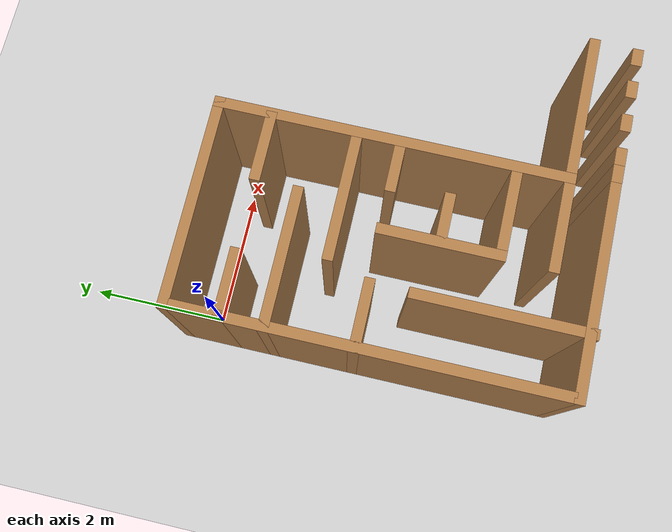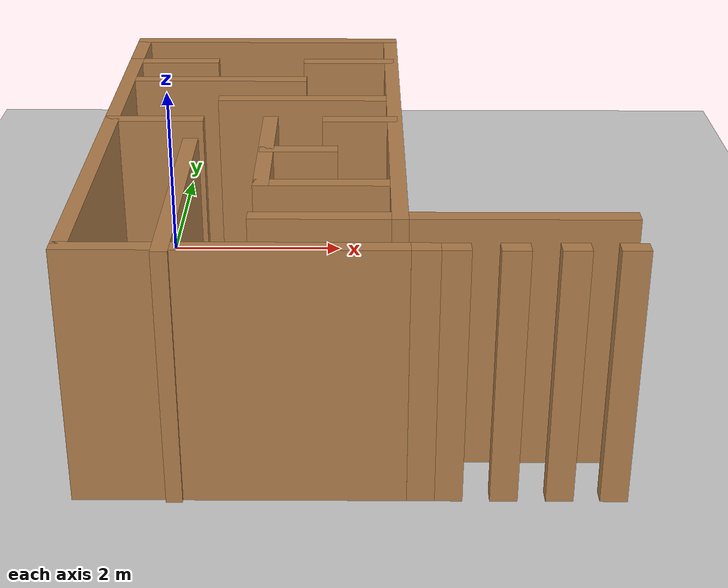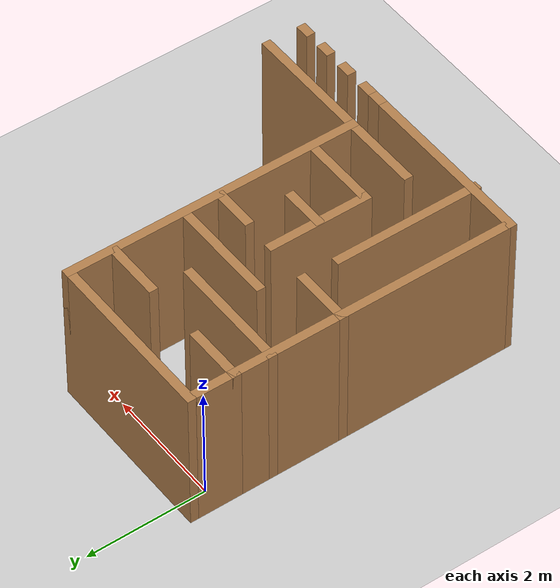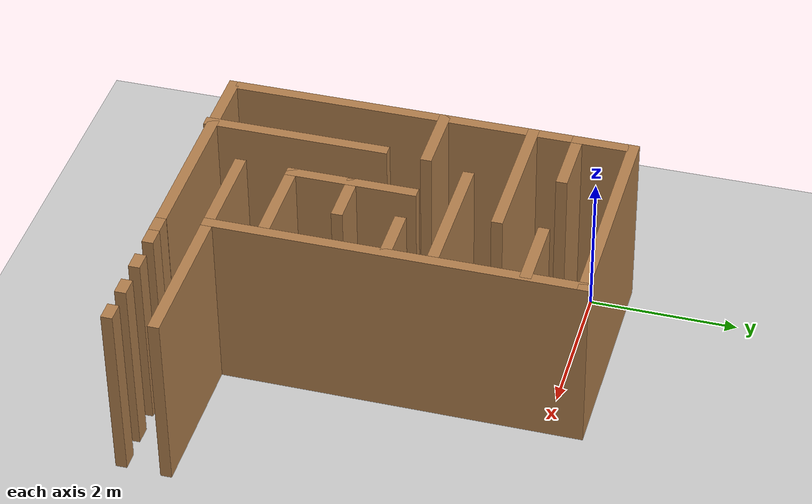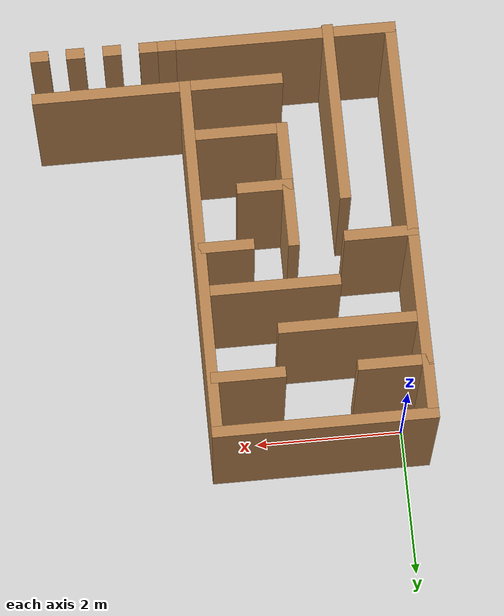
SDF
<sdf version="1.6">
 <world name="default">
  <scene><ambient>0.4 0.4 0.4 1</ambient><background>0.7 0.7 0.7 1</background><shadows>1</shadows></scene>
  <light name="sun" type="directional">
   <pose>0 0 10 0 -0 0</pose>
   <diffuse>0.8 0.8 0.8 1</diffuse>
   <specular>0.1 0.1 0.1 1</specular>
   <attenuation>
    <range>1000</range>
    <constant>0.9</constant>
    <linear>0.01</linear>
    <quadratic>0.001</quadratic>
   </attenuation>
   <direction>-0.5 0.5 -1</direction>
  </light>
  <model name="ground_plane">
   <static>1</static>
   <link name="link">
    <collision name="collision">
     <geometry><plane><normal>0 0 1</normal><size>100 100</size></plane></geometry>
     <surface><friction><ode><mu>100</mu><mu2>50</mu2></ode></friction></surface>
    </collision>
    <visual name="visual">
     <cast_shadows>0</cast_shadows>
     <geometry><plane><normal>0 0 1</normal><size>100 100</size></plane></geometry>
     <material>
      <script><uri>file://media/materials/scripts/gazebo.material</uri><name>Gazebo/Grey</name></script>
     </material>
    </visual>
   </link>
  </model>
  <physics name="default_physics" default="0" type="ode">
   <real_time_update_rate>1000</real_time_update_rate>
   <max_step_size>0.001</max_step_size>
   <real_time_factor>1</real_time_factor>
   <ode>
    <solver>
     <type>quick</type>
     <iters>150</iters>
     <precon_iters>0</precon_iters>
     <sor>1.4</sor>
     <use_dynamic_moi_rescaling>1</use_dynamic_moi_rescaling>
    </solver>
    <constraints>
     <cfm>1e-05</cfm>
     <erp>0.2</erp>
     <contact_max_correcting_vel>2000</contact_max_correcting_vel>
     <contact_surface_layer>0.01</contact_surface_layer>
    </constraints>
   </ode>
  </physics>
  <gravity>0 0 -9.8</gravity>
  <magnetic_field>6e-06 2.3e-05 -4.2e-05</magnetic_field>
  <atmosphere type="adiabatic"/>
  <spherical_coordinates>
   <surface_model>EARTH_WGS84</surface_model>
   <latitude_deg>0</latitude_deg>
   <longitude_deg>0</longitude_deg>
   <elevation>0</elevation>
   <heading_deg>0</heading_deg>
  </spherical_coordinates>
  <model name="Untitled">
   <pose>2.15464 -2.32386 0 0 -0 0</pose>
   <link name="Wall_11">
    <collision name="Wall_11_Collision">
     <geometry><box><size>1 0.15 2.5</size></box></geometry>
     <pose>0 0 1.25 0 -0 0</pose>
    </collision>
    <visual name="Wall_11_Visual">
     <pose>0 0 1.25 0 -0 0</pose>
     <geometry><box><size>1 0.15 2.5</size></box></geometry>
     <material>
      <script><uri>file://media/materials/scripts/gazebo.material</uri><name>Gazebo/Wood</name></script>
      <ambient>1 1 1 1</ambient>
     </material>
    </visual>
    <pose>-0.049498 2.00656 0 0 -0 0</pose>
   </link>
   <link name="Wall_13">
    <collision name="Wall_13_Collision">
     <geometry><box><size>4.75 0.15 2.5</size></box></geometry>
     <pose>0 0 1.25 0 -0 0</pose>
    </collision>
    <visual name="Wall_13_Visual">
     <pose>0 0 1.25 0 -0 0</pose>
     <geometry><box><size>4.75 0.15 2.5</size></box></geometry>
     <material>
      <script><uri>file://media/materials/scripts/gazebo.material</uri><name>Gazebo/Wood</name></script>
      <ambient>1 1 1 1</ambient>
     </material>
    </visual>
    <pose>-2.4245 -0.293439 0 0 0 -1.5708</pose>
   </link>
   <link name="Wall_16">
    <collision name="Wall_16_Collision">
     <geometry><box><size>2 0.15 2.5</size></box></geometry>
     <pose>0 0 1.25 0 -0 0</pose>
    </collision>
    <visual name="Wall_16_Visual">
     <pose>0 0 1.25 0 -0 0</pose>
     <geometry><box><size>2 0.15 2.5</size></box></geometry>
     <material>
      <script><uri>file://media/materials/scripts/gazebo.material</uri><name>Gazebo/Wood</name></script>
      <ambient>1 1 1 1</ambient>
     </material>
    </visual>
    <pose>-1.4995 1.40656 0 0 -0 3.14159</pose>
   </link>
   <link name="Wall_19">
    <collision name="Wall_19_Collision">
     <geometry><box><size>1.75 0.15 2.5</size></box></geometry>
     <pose>0 0 1.25 0 -0 0</pose>
    </collision>
    <visual name="Wall_19_Visual">
     <pose>0 0 1.25 0 -0 0</pose>
     <geometry><box><size>1.75 0.15 2.5</size></box></geometry>
     <material>
      <script><uri>file://media/materials/scripts/gazebo.material</uri><name>Gazebo/Wood</name></script>
      <ambient>1 1 1 1</ambient>
     </material>
    </visual>
    <pose>-0.524498 0.806561 0 0 -0 0</pose>
   </link>
   <link name="Wall_22">
    <collision name="Wall_22_Collision">
     <geometry><box><size>1 0.15 2.5</size></box></geometry>
     <pose>0 0 1.25 0 -0 0</pose>
    </collision>
    <visual name="Wall_22_Visual">
     <pose>0 0 1.25 0 -0 0</pose>
     <geometry><box><size>1 0.15 2.5</size></box></geometry>
     <material>
      <script><uri>file://media/materials/scripts/gazebo.material</uri><name>Gazebo/Wood</name></script>
      <ambient>1 1 1 1</ambient>
     </material>
    </visual>
    <pose>-1.9995 0.206561 0 0 -0 3.14159</pose>
   </link>
   <link name="Wall_25">
    <collision name="Wall_25_Collision">
     <geometry><box><size>0.75 0.15 2.5</size></box></geometry>
     <pose>0 0 1.25 0 -0 0</pose>
    </collision>
    <visual name="Wall_25_Visual">
     <pose>0 0 1.25 0 -0 0</pose>
     <geometry><box><size>0.75 0.15 2.5</size></box></geometry>
     <material>
      <script><uri>file://media/materials/scripts/gazebo.material</uri><name>Gazebo/Wood</name></script>
      <ambient>1 1 1 1</ambient>
     </material>
    </visual>
    <pose>0.075502 0.206561 0 0 -0 0</pose>
   </link>
   <link name="Wall_28">
    <collision name="Wall_28_Collision">
     <geometry><box><size>1.75 0.15 2.5</size></box></geometry>
     <pose>0 0 1.25 0 -0 0</pose>
    </collision>
    <visual name="Wall_28_Visual">
     <pose>0 0 1.25 0 -0 0</pose>
     <geometry><box><size>1.75 0.15 2.5</size></box></geometry>
     <material>
      <script><uri>file://media/materials/scripts/gazebo.material</uri><name>Gazebo/Wood</name></script>
      <ambient>1 1 1 1</ambient>
     </material>
    </visual>
    <pose>-0.824498 -0.593439 0 0 0 -1.5708</pose>
   </link>
   <link name="Wall_3">
    <collision name="Wall_3_Collision">
     <geometry><box><size>0.75 0.15 2.5</size></box></geometry>
     <pose>0 0 1.25 0 -0 0</pose>
    </collision>
    <visual name="Wall_3_Visual">
     <pose>0 0 1.25 0 -0 0</pose>
     <geometry><box><size>0.75 0.15 2.5</size></box></geometry>
     <material>
      <script><uri>file://media/materials/scripts/gazebo.material</uri><name>Gazebo/Wood</name></script>
      <ambient>1 1 1 1</ambient>
     </material>
    </visual>
    <pose>-2.4245 2.30656 0 0 0 -1.5708</pose>
   </link>
   <link name="Wall_30">
    <collision name="Wall_30_Collision">
     <geometry><box><size>1.25 0.15 2.5</size></box></geometry>
     <pose>0 0 1.25 0 -0 0</pose>
    </collision>
    <visual name="Wall_30_Visual">
     <pose>0 0 1.25 0 -0 0</pose>
     <geometry><box><size>1.25 0.15 2.5</size></box></geometry>
     <material>
      <script><uri>file://media/materials/scripts/gazebo.material</uri><name>Gazebo/Wood</name></script>
      <ambient>1 1 1 1</ambient>
     </material>
    </visual>
    <pose>-0.274498 -1.39344 0 0 -0 0</pose>
   </link>
   <link name="Wall_32">
    <collision name="Wall_32_Collision">
     <geometry><box><size>0.75 0.15 2.5</size></box></geometry>
     <pose>0 0 1.25 0 -0 0</pose>
    </collision>
    <visual name="Wall_32_Visual">
     <pose>0 0 1.25 0 -0 0</pose>
     <geometry><box><size>0.75 0.15 2.5</size></box></geometry>
     <material>
      <script><uri>file://media/materials/scripts/gazebo.material</uri><name>Gazebo/Wood</name></script>
      <ambient>1 1 1 1</ambient>
     </material>
    </visual>
    <pose>-0.51237 -0.587277 0 0 -0 0</pose>
   </link>
   <link name="Wall_35">
    <collision name="Wall_35_Collision">
     <geometry><box><size>2.5 0.15 2.5</size></box></geometry>
     <pose>0 0 1.25 0 -0 0</pose>
    </collision>
    <visual name="Wall_35_Visual">
     <pose>0 0 1.25 0 -0 0</pose>
     <geometry><box><size>2.5 0.15 2.5</size></box></geometry>
     <material>
      <script><uri>file://media/materials/scripts/gazebo.material</uri><name>Gazebo/Wood</name></script>
      <ambient>1 1 1 1</ambient>
     </material>
    </visual>
    <pose>-1.5745 -1.56844 0 0 0 -1.5708</pose>
   </link>
   <link name="Wall_38">
    <collision name="Wall_38_Collision">
     <geometry><box><size>1.25 0.15 2.5</size></box></geometry>
     <pose>0 0 1.25 0 -0 0</pose>
    </collision>
    <visual name="Wall_38_Visual">
     <pose>0 0 1.25 0 -0 0</pose>
     <geometry><box><size>1.25 0.15 2.5</size></box></geometry>
     <material>
      <script><uri>file://media/materials/scripts/gazebo.material</uri><name>Gazebo/Wood</name></script>
      <ambient>1 1 1 1</ambient>
     </material>
    </visual>
    <pose>-0.274498 -2.10648 0 0 -0 0</pose>
   </link>
   <link name="Wall_41">
    <collision name="Wall_41_Collision">
     <geometry><box><size>3 0.15 2.5</size></box></geometry>
     <pose>0 0 1.25 0 -0 0</pose>
    </collision>
    <visual name="Wall_41_Visual">
     <pose>0 0 1.25 0 -0 0</pose>
     <geometry><box><size>3 0.15 2.5</size></box></geometry>
     <material>
      <script><uri>file://media/materials/scripts/gazebo.material</uri><name>Gazebo/Wood</name></script>
      <ambient>1 1 1 1</ambient>
     </material>
    </visual>
    <pose>-0.999498 -2.70656 0 0 -0 3.14159</pose>
   </link>
   <link name="Wall_44">
    <collision name="Wall_44_Collision">
     <geometry><box><size>2 0.15 2.5</size></box></geometry>
     <pose>0 0 1.25 0 -0 0</pose>
    </collision>
    <visual name="Wall_44_Visual">
     <pose>0 0 1.25 0 -0 0</pose>
     <geometry><box><size>2 0.15 2.5</size></box></geometry>
     <material>
      <script><uri>file://media/materials/scripts/gazebo.material</uri><name>Gazebo/Wood</name></script>
      <ambient>1 1 1 1</ambient>
     </material>
    </visual>
    <pose>1.4995 -2.10428 0 0 -0 0</pose>
   </link>
   <link name="Wall_46">
    <collision name="Wall_46_Collision">
     <geometry><box><size>0.25 0.15 2.5</size></box></geometry>
     <pose>0 0 1.25 0 -0 0</pose>
    </collision>
    <visual name="Wall_46_Visual">
     <pose>0 0 1.25 0 -0 0</pose>
     <geometry><box><size>0.25 0.15 2.5</size></box></geometry>
     <material>
      <script><uri>file://media/materials/scripts/gazebo.material</uri><name>Gazebo/Wood</name></script>
      <ambient>1 1 1 1</ambient>
     </material>
    </visual>
    <pose>0.624498 -2.70919 0 0 -0 0</pose>
   </link>
   <link name="Wall_5">
    <collision name="Wall_5_Collision">
     <geometry><box><size>3 0.15 2.5</size></box></geometry>
     <pose>0 0 1.25 0 -0 0</pose>
    </collision>
    <visual name="Wall_5_Visual">
     <pose>0 0 1.25 0 -0 0</pose>
     <geometry><box><size>3 0.15 2.5</size></box></geometry>
     <material>
      <script><uri>file://media/materials/scripts/gazebo.material</uri><name>Gazebo/Wood</name></script>
      <ambient>1 1 1 1</ambient>
     </material>
    </visual>
    <pose>-0.999498 2.74344 0 0 -0 0</pose>
   </link>
   <link name="Wall_50">
    <collision name="Wall_50_Collision">
     <geometry><box><size>0.25 0.15 2.5</size></box></geometry>
     <pose>0 0 1.25 0 -0 0</pose>
    </collision>
    <visual name="Wall_50_Visual">
     <pose>0 0 1.25 0 -0 0</pose>
     <geometry><box><size>0.25 0.15 2.5</size></box></geometry>
     <material>
      <script><uri>file://media/materials/scripts/gazebo.material</uri><name>Gazebo/Wood</name></script>
      <ambient>1 1 1 1</ambient>
     </material>
    </visual>
    <pose>0.874354 -2.70919 0 0 -0 0</pose>
   </link>
   <link name="Wall_54">
    <collision name="Wall_54_Collision">
     <geometry><box><size>0.25 0.15 2.5</size></box></geometry>
     <pose>0 0 1.25 0 -0 0</pose>
    </collision>
    <visual name="Wall_54_Visual">
     <pose>0 0 1.25 0 -0 0</pose>
     <geometry><box><size>0.25 0.15 2.5</size></box></geometry>
     <material>
      <script><uri>file://media/materials/scripts/gazebo.material</uri><name>Gazebo/Wood</name></script>
      <ambient>1 1 1 1</ambient>
     </material>
    </visual>
    <pose>1.36749 -2.70919 0 0 -0 0</pose>
   </link>
   <link name="Wall_58">
    <collision name="Wall_58_Collision">
     <geometry><box><size>0.25 0.15 2.5</size></box></geometry>
     <pose>0 0 1.25 0 -0 0</pose>
    </collision>
    <visual name="Wall_58_Visual">
     <pose>0 0 1.25 0 -0 0</pose>
     <geometry><box><size>0.25 0.15 2.5</size></box></geometry>
     <material>
      <script><uri>file://media/materials/scripts/gazebo.material</uri><name>Gazebo/Wood</name></script>
      <ambient>1 1 1 1</ambient>
     </material>
    </visual>
    <pose>1.8672 -2.70919 0 0 -0 0</pose>
   </link>
   <link name="Wall_62">
    <collision name="Wall_62_Collision">
     <geometry><box><size>0.25 0.15 2.5</size></box></geometry>
     <pose>0 0 1.25 0 -0 0</pose>
    </collision>
    <visual name="Wall_62_Visual">
     <pose>0 0 1.25 0 -0 0</pose>
     <geometry><box><size>0.25 0.15 2.5</size></box></geometry>
     <material>
      <script><uri>file://media/materials/scripts/gazebo.material</uri><name>Gazebo/Wood</name></script>
      <ambient>1 1 1 1</ambient>
     </material>
    </visual>
    <pose>2.35377 -2.70919 0 0 -0 0</pose>
   </link>
   <link name="Wall_7">
    <collision name="Wall_7_Collision">
     <geometry><box><size>5 0.15 2.5</size></box></geometry>
     <pose>0 0 1.25 0 -0 0</pose>
    </collision>
    <visual name="Wall_7_Visual">
     <pose>0 0 1.25 0 -0 0</pose>
     <geometry><box><size>5 0.15 2.5</size></box></geometry>
     <material>
      <script><uri>file://media/materials/scripts/gazebo.material</uri><name>Gazebo/Wood</name></script>
      <ambient>1 1 1 1</ambient>
     </material>
    </visual>
    <pose>0.425502 0.318439 0 0 0 -1.5708</pose>
   </link>
   <link name="Wall_9">
    <collision name="Wall_9_Collision">
     <geometry><box><size>1 0.15 2.5</size></box></geometry>
     <pose>0 0 1.25 0 -0 0</pose>
    </collision>
    <visual name="Wall_9_Visual">
     <pose>0 0 1.25 0 -0 0</pose>
     <geometry><box><size>1 0.15 2.5</size></box></geometry>
     <material>
      <script><uri>file://media/materials/scripts/gazebo.material</uri><name>Gazebo/Wood</name></script>
      <ambient>1 1 1 1</ambient>
     </material>
    </visual>
    <pose>-1.9995 2.00656 0 0 -0 0</pose>
   </link>
   <static>1</static>
  </model>
 </world>
</sdf>
